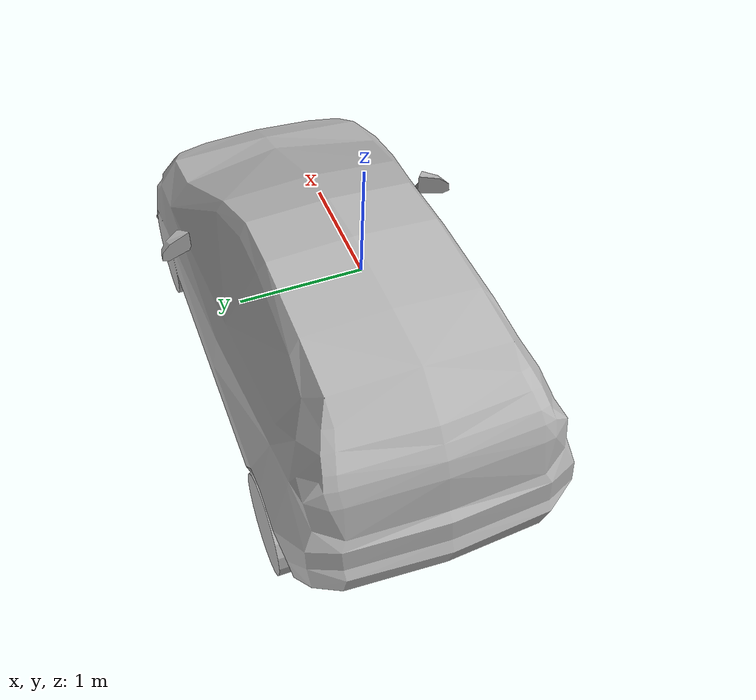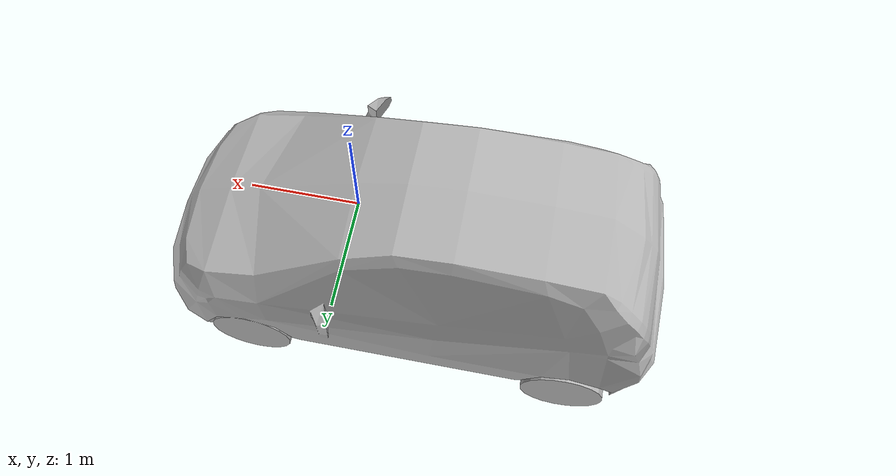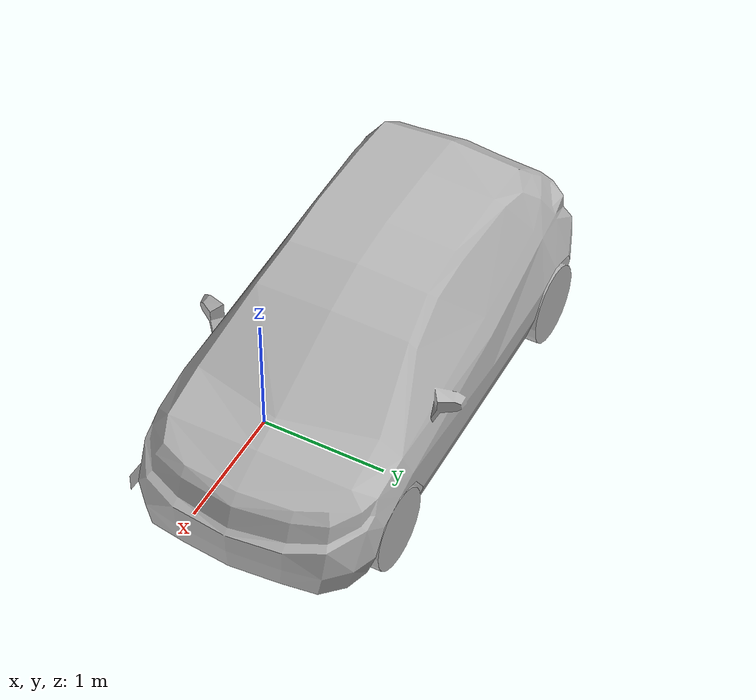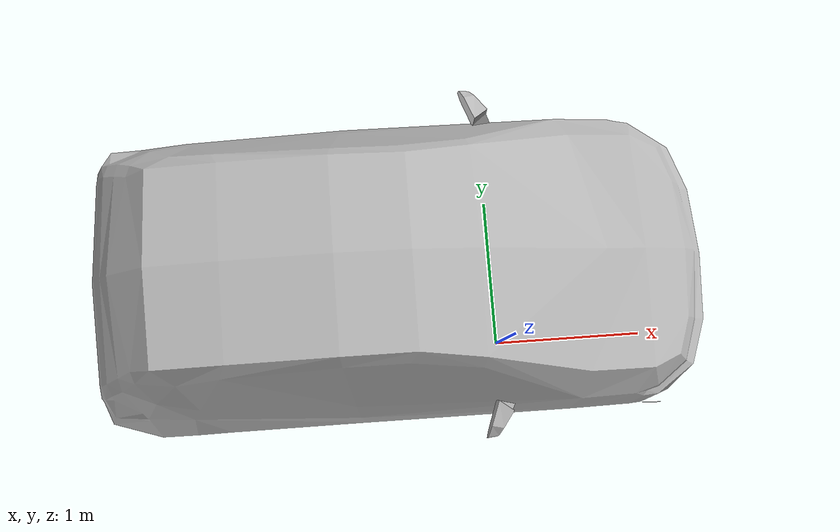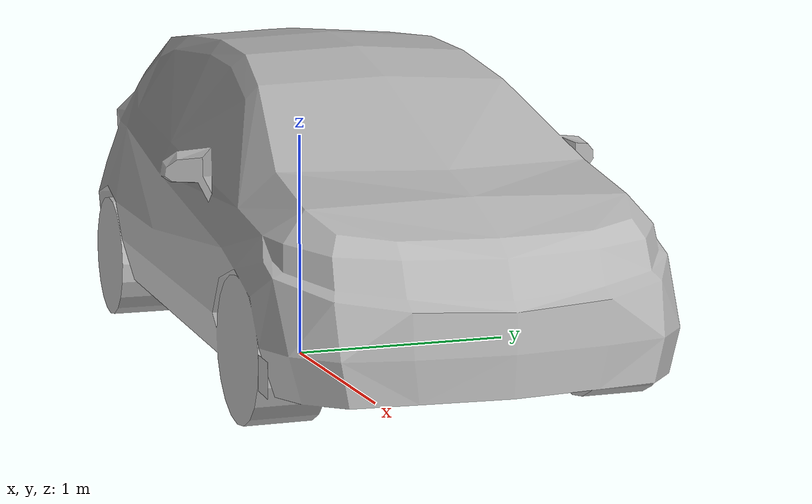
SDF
<?xml version='1.0'?>
<sdf version='1.6'>
  <model name='carToyota_aruco'>
    <model name='aruco_marker'>
      <link name='link'>
        <inertial>
          <pose frame=''>0 0 0 0 -0 0</pose>
          <mass>0.001</mass>
          <inertia>
            <ixx>3.75e-06</ixx>
            <ixy>0</ixy>
            <ixz>0</ixz>
            <iyy>1.875e-06</iyy>
            <iyz>0</iyz>
            <izz>1.875e-06</izz>
          </inertia>
        </inertial>
        <visual name='front_visual'>
          <pose frame=''>5e-05 0 0 0 -0 0</pose>
          <geometry>
            <box>
              <size>0.0001 0.15 0.15</size>
            </box>
          </geometry>
          <material>
            <script>
              <uri>model://aruco_marker/materials/scripts</uri>
              <uri>model://aruco_marker/materials/textures</uri>
              <name>Marker</name>
            </script>
          </material>
        </visual>
        <visual name='rear_visual'>
          <pose frame=''>-5e-05 0 0 0 -0 0</pose>
          <geometry>
            <box>
              <size>0.0001 0.15 0.15</size>
            </box>
          </geometry>
        </visual>
        <collision name='collision'>
          <pose frame=''>0 0 0 0 -0 0</pose>
          <geometry>
            <box>
              <size>0.0001 0.15 0.15</size>
            </box>
          </geometry>
        </collision>
      </link>
      <pose frame=''>0.997484 -0.476205 0.14868 0 0 -1.60596</pose>
    </model>
    <model name='hatchback'>
      <static>1</static>
      <link name='link'>
        <collision name='collision'>
          <pose frame=''>0 0 0 0 -0 1.5708</pose>
          <geometry>
            <mesh>
              <scale>0.0254 0.0254 0.0254</scale>
              <uri>model://hatchback/meshes/hatchback.obj</uri>
            </mesh>
          </geometry>
        </collision>
        <visual name='visual'>
          <pose frame=''>0 0 0 0 -0 1.5708</pose>
          <geometry>
            <mesh>
              <scale>0.0254 0.0254 0.0254</scale>
              <uri>model://hatchback/meshes/hatchback.obj</uri>
            </mesh>
          </geometry>
        </visual>
      </link>
      <pose frame=''>-0.997484 0.476204 -0.148681 0 -0 0</pose>
    </model>
    <static>0</static>
    <allow_auto_disable>1</allow_auto_disable>
  </model>
</sdf>
